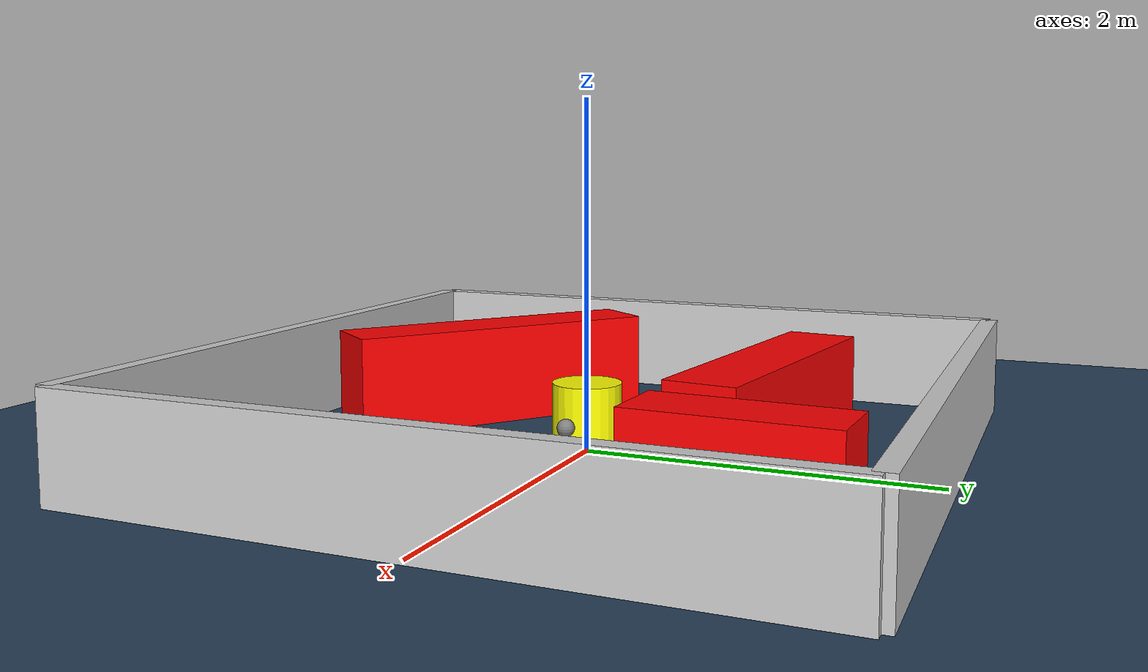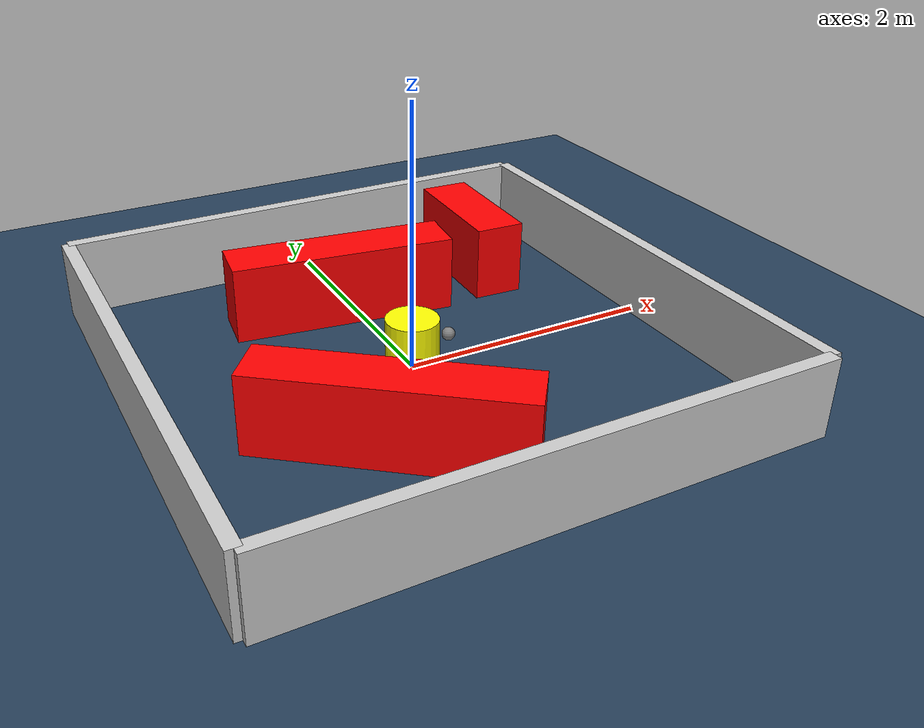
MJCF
<?xml version="1.0" ?>
<mujoco model="generated_environment">
  <option timestep="0.01" integrator="RK4" cone="elliptic"/>
  <default>
    <geom density="1"/>
  </default>
  <asset>
    <texture builtin="gradient" height="3072" rgb1="0.3 0.5 0.7" rgb2="0 0 0" type="skybox" width="512"/>
    <texture builtin="checker" height="300" mark="edge" markrgb="0.8 0.8 0.8" name="groundplane" rgb1="0.2 0.3 0.4" rgb2="0.1 0.2 0.3" type="2d" width="300"/>
    <material name="groundplane" reflectance="0.2" texrepeat="5 5" texture="groundplane" texuniform="true"/>
    <material name="robot" rgba="0.0 1.0 0.0 1"/>
  </asset>
  <worldbody>
    <light dir="0 0 -1" directional="true" pos="0 0 1.5"/>
    <geom condim="4" friction="1.0 0.005 0.001" material="groundplane" name="floor" size="0 0 0.05" type="plane"/>
    <body name="walls">
      <geom name="wall_1" condim="4" pos="-2.0 0.0 0.3" rgba="0.800000011920929 0.800000011920929 0.800000011920929 1.0" size="0.05 2.0 0.3" type="box"/>
      <geom name="wall_2" condim="4" pos="2.0 0.0 0.3" rgba="0.800000011920929 0.800000011920929 0.800000011920929 1.0" size="0.05 2.0 0.3" type="box"/>
      <geom name="wall_3" condim="4" pos="0.0 -2.0 0.3" rgba="0.800000011920929 0.800000011920929 0.800000011920929 1.0" size="2.0 0.05 0.3" type="box"/>
      <geom name="wall_4" condim="4" pos="0.0 2.0 0.3" rgba="0.800000011920929 0.800000011920929 0.800000011920929 1.0" size="2.0 0.05 0.3" type="box"/>
    </body>
    <body name="robot">
      <joint name="joint_x" type="slide" pos="0 0 0" axis="1 0 0"/>
      <joint name="joint_y" type="slide" pos="0 0 0" axis="0 1 0"/>
      <geom name="robot" type="sphere" pos="0.3 0.0 0.2" size="0.05" mass="5." friction="1.0 0.005 0.0001" condim="4" rgba="0.5 0.5 0.5 1.0"/>
      <site name="sensor_ball"/>
    </body>
    <body name="obstacle_movable_1">
      <geom name="obstacle_movable_1" condim="4" pos="0.0 0.0 0.2" euler="0 0 0.0" friction="1.0 0.005 0.001" rgba="1.0 1.0 0.0 1.0" size="0.2 0.2 0.0" type="cylinder" mass="0.1"/>
      <joint type="free"/>
    </body>
    <body name="obstacle_2_static">
      <geom name="obstacle_2_static" condim="4" pos="-0.12532591731427134 1.0105354650348797 0.3" euler="0 0 352.58318303078215" friction="1.0 0.005 0.001" rgba="1 0 0 1" size="0.8761670904546506 0.2 0.3" type="box"/>
    </body>
    <body name="obstacle_3_static">
      <geom name="obstacle_3_static" condim="4" pos="-0.6151862448472414 -0.9011334809477933 0.3" euler="0 0 322.3753257565774" friction="1.0 0.005 0.001" rgba="1 0 0 1" size="0.9593325607771261 0.2 0.3" type="box"/>
    </body>
    <body name="obstacle_4_static">
      <geom name="obstacle_4_static" condim="4" pos="1.2026933214854527 1.2399792038176496 0.3" euler="0 0 87.44239970460085" friction="1.0 0.005 0.001" rgba="1 0 0 1" size="0.5182176455902916 0.2 0.3" type="box"/>
    </body>
  </worldbody>
  <actuator>
    <motor name="actuator_x" joint="joint_x" gear="1" ctrlrange="-1 1"/>
    <motor name="actuator_y" joint="joint_y" gear="1" ctrlrange="-1 1"/>
  </actuator>
</mujoco>
